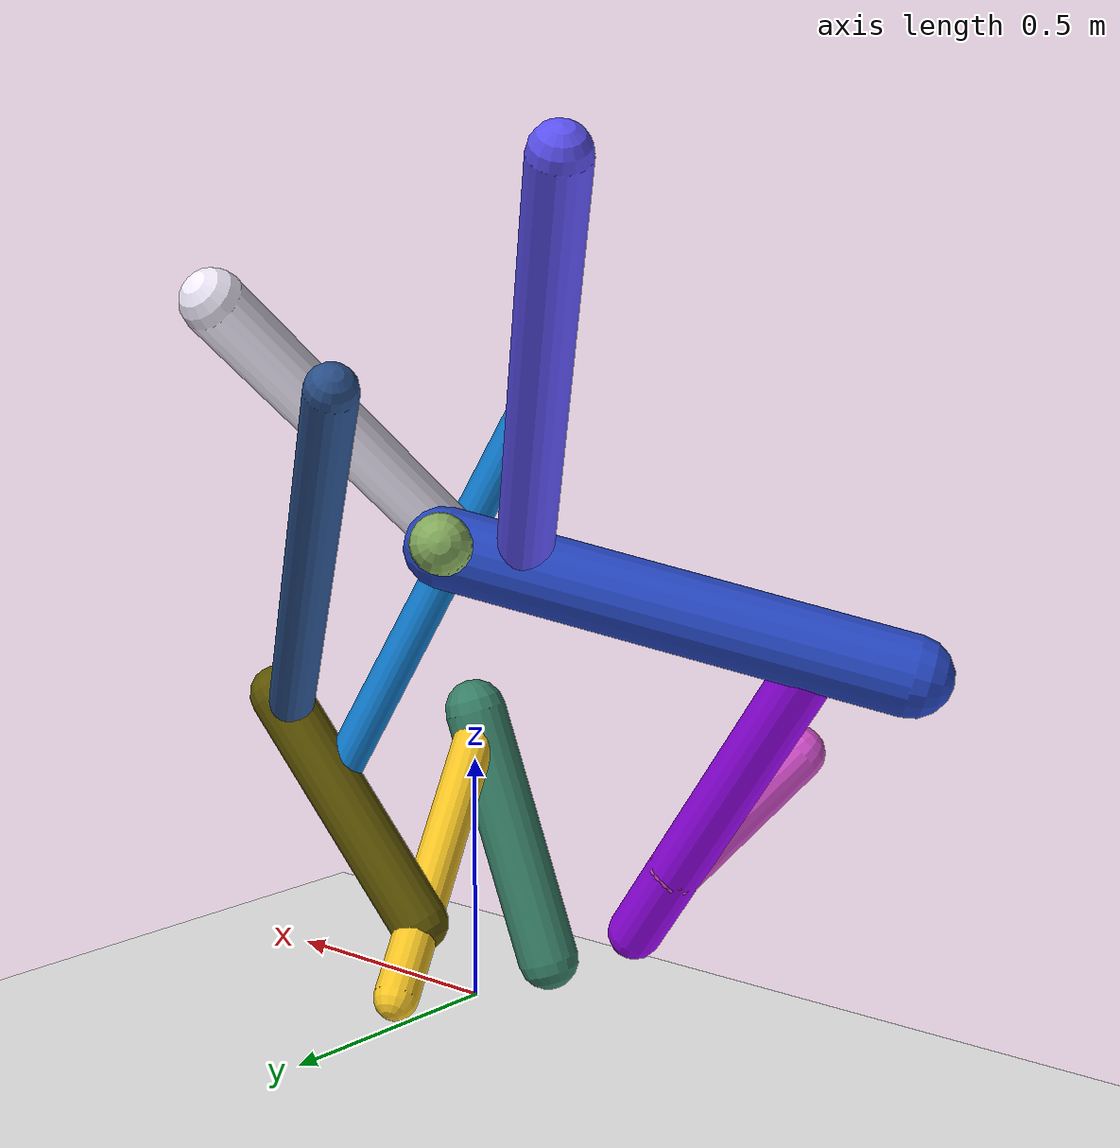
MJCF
<mujoco model="morphology">
  <option timestep="0.01"/>
  <default>
    <default class="/"/>
    <default class="0/"/>
    <default class="0/1/"/>
    <default class="0/1/2/"/>
    <default class="0/1/2/3/"/>
    <default class="0/1/2/4/"/>
    <default class="0/1/2/4/5/"/>
    <default class="0/1/2/4/6/"/>
    <default class="0/1/2/4/6/7/"/>
    <default class="0/1/2/4/6/7/8/"/>
    <default class="0/1/2/4/6/7/9/"/>
    <default class="0/1/2/4/6/7/9/10/"/>
  </default>
  <asset>
    <texture name="texplane" type="2d" builtin="checker" rgb1="0.10000000000000001 0.20000000000000001 0.29999999999999999" rgb2="0.20000000000000001 0.29999999999999999 0.40000000000000002" width="300" height="300"/>
    <material name="MatPlane" class="/" texture="texplane" texrepeat="20 20" specular="1" shininess="1" reflectance="0.5"/>
  </asset>
  <worldbody>
    <light name="//unnamed_light_0" class="/" directional="true" pos="0 0 1.5" dir="0 0 -1.3" cutoff="100" exponent="1" diffuse="1 1 1" specular="0.10000000000000001 0.10000000000000001 0.10000000000000001"/>
    <geom name="ground" class="/" type="plane" size="15 15 0.5" material="MatPlane" rgba="1 1 1 1"/>
    <site name="body" class="/" size="9.9999999999999995e-07 9.9999999999999995e-07 9.9999999999999995e-07" pos="0 0 0.60107800960540769"/>
    <body pos="0 0 0.60107800960540769" name="0/">
      <freejoint name="0/"/>
      <geom name="0/geom" class="0/" type="capsule" contype="1" conaffinity="1" condim="3" size="0.0617949039909454" rgba="0.21771089611785077 0.50197276438529403 0.40774222404812877 1" friction="0.59999999999999998 0.10000000000000001 0.10000000000000001" fromto="0 0 0 -0.1534791893275893 -0.046990474458977971 -0.50107798431670281"/>
      <site name="0/end0" class="0/" size="0.0050000000000000001" pos="-0.1534791893275893 -0.046990474458977971 -0.50107798431670281"/>
      <site name="0/attach1" class="0/" size="9.9999999999999995e-07 9.9999999999999995e-07 9.9999999999999995e-07" pos="-0.0082948822211645918 -0.0025396306356681975 -0.027081084293806991"/>
      <body pos="-0.0082948822211645918 -0.0025396306356681975 -0.027081084293806991" name="0/1/">
        <joint name="0/1/joint/" class="0/" type="hinge" axis="0 1 0" limited="true" range="-57.789776338162994 57.789776338162994"/>
        <geom name="0/1/geom" class="0/1/" type="capsule" contype="1" conaffinity="1" condim="3" size="0.041923635595529363" rgba="0.96104423388136162 0.77043543298782746 0.14104224936025622 1" friction="0.59999999999999998 0.10000000000000001 0.10000000000000001" fromto="0 0 0 -0.18343248424038505 0.43962465359193192 -0.41034713341520407"/>
        <site name="0/1/end1" class="0/1/" size="0.0050000000000000001" pos="-0.18343248424038505 0.43962465359193192 -0.41034713341520407"/>
        <site name="0/1/attach2" class="0/1/" size="9.9999999999999995e-07 9.9999999999999995e-07 9.9999999999999995e-07" pos="-0.13636793045490492 0.32682708537448524 -0.30506150305745144"/>
        <body pos="-0.13636793045490492 0.32682708537448524 -0.30506150305745144" name="0/1/2/">
          <geom name="0/1/2/geom" class="0/1/2/" type="capsule" contype="1" conaffinity="1" condim="3" size="0.056002284842652551" rgba="0.35976978968058149 0.32273571199873985 0.00953609732104721 1" friction="0.59999999999999998 0.10000000000000001 0.10000000000000001" fromto="0 0 0 0.28245395055756717 0.081099540083836907 0.41032196096225393"/>
          <site name="0/1/2/end2" class="0/1/2/" size="0.0050000000000000001" pos="0.28245395055756717 0.081099540083836907 0.41032196096225393"/>
          <site name="0/1/2/attach3" class="0/1/2/" size="9.9999999999999995e-07 9.9999999999999995e-07 9.9999999999999995e-07" pos="0.25971401445712688 0.074570339994260965 0.37728756666728969"/>
          <body pos="0.25971401445712688 0.074570339994260965 0.37728756666728969" name="0/1/2/3/">
            <joint name="0/1/2/3/joint/" class="0/1/2/" type="hinge" axis="5.5511151231257827e-17 -0.98102178716857957 0.19389753247673347" limited="true" range="-52.95073511342023 52.95073511342023"/>
            <geom name="0/1/2/3/geom" class="0/1/2/3/" type="capsule" contype="1" conaffinity="1" condim="3" size="0.042939373639543373" rgba="0.15866323306595675 0.30493280463561623 0.53127416372716985 1" friction="0.59999999999999998 0.10000000000000001 0.10000000000000001" fromto="0 0 0 -0.59239419379882063 0.45891489011203013 0.64705589140596564"/>
            <site name="0/1/2/3/end3" class="0/1/2/3/" size="0.0050000000000000001" pos="-0.59239419379882063 0.45891489011203013 0.64705589140596564"/>
          </body>
          <site name="0/1/2/attach4" class="0/1/2/" size="9.9999999999999995e-07 9.9999999999999995e-07 9.9999999999999995e-07" pos="0.17040812273101039 0.048928401789934628 0.24755254775108454"/>
          <body pos="0.17040812273101039 0.048928401789934628 0.24755254775108454" name="0/1/2/4/">
            <joint name="0/1/2/4/joint/" class="0/1/2/" type="hinge" axis="5.5511151231257827e-17 -0.98102178716857957 0.19389753247673347" limited="true" range="-43.828291327086305 43.828291327086305"/>
            <geom name="0/1/2/4/geom" class="0/1/2/4/" type="capsule" contype="1" conaffinity="1" condim="3" size="0.037119592405710888" rgba="0.05037571528140572 0.45564381320567282 0.76319961074131693 1" friction="0.59999999999999998 0.10000000000000001 0.10000000000000001" fromto="0 0 0 -0.20504494414269514 -0.3256464013540149 0.70074238108833464"/>
            <site name="0/1/2/4/end4" class="0/1/2/4/" size="0.0050000000000000001" pos="-0.20504494414269514 -0.3256464013540149 0.70074238108833464"/>
            <site name="0/1/2/4/attach5" class="0/1/2/4/" size="9.9999999999999995e-07 9.9999999999999995e-07 9.9999999999999995e-07" pos="-0.13041039644695979 -0.20711398898257499 0.44567834679854462"/>
            <body pos="-0.13041039644695979 -0.20711398898257499 0.44567834679854462" name="0/1/2/4/5/">
              <joint name="0/1/2/4/5/joint/" class="0/1/2/4/" type="hinge" axis="0.9665493289138033 -0.10808934226180855 0.2325921083478234" limited="true" range="-57.999969049333686 57.999969049333686"/>
              <geom name="0/1/2/4/5/geom" class="0/1/2/4/5/" type="capsule" contype="1" conaffinity="1" condim="3" size="0.05492281189191757" rgba="0.95263715685082495 0.9278501656620094 0.99630708252124955 1" friction="0.59999999999999998 0.10000000000000001 0.10000000000000001" fromto="0 0 0 -0.042270032641058553 0.62781712028079761 0.45537519925791825"/>
              <site name="0/1/2/4/5/end5" class="0/1/2/4/5/" size="0.0050000000000000001" pos="-0.042270032641058553 0.62781712028079761 0.45537519925791825"/>
            </body>
            <site name="0/1/2/4/attach6" class="0/1/2/4/" size="9.9999999999999995e-07 9.9999999999999995e-07 9.9999999999999995e-07" pos="-0.12455193198687939 -0.1978097465548373 0.42565700780653726"/>
            <body pos="-0.12455193198687939 -0.1978097465548373 0.42565700780653726" name="0/1/2/4/6/">
              <joint name="0/1/2/4/6/joint/" class="0/1/2/4/" type="hinge" axis="0.9665493289138033 -0.10808934226180855 0.2325921083478234" limited="true" range="-34.152856513040206 34.152856513040206"/>
              <geom name="0/1/2/4/6/geom" class="0/1/2/4/6/" type="capsule" contype="1" conaffinity="1" condim="3" size="0.047004274551865829" rgba="0.51733868668150318 0.67041627325562947 0.36310719720421913 1" friction="0.59999999999999998 0.10000000000000001 0.10000000000000001" fromto="0 0 0 -0.49930045825264546 0.57938564082510058 0.12468292475479537"/>
              <site name="0/1/2/4/6/end6" class="0/1/2/4/6/" size="0.0050000000000000001" pos="-0.49930045825264546 0.57938564082510058 0.12468292475479537"/>
              <site name="0/1/2/4/6/attach7" class="0/1/2/4/6/" size="9.9999999999999995e-07 9.9999999999999995e-07 9.9999999999999995e-07" pos="-0.35431855081404851 0.41114939356963986 0.088478735559306063"/>
              <body pos="-0.35431855081404851 0.41114939356963986 0.088478735559306063" name="0/1/2/4/6/7/">
                <joint name="0/1/2/4/6/7/joint/" class="0/1/2/4/6/" type="hinge" axis="0 -0.21038219551662973 0.97761921616220415" limited="true" range="-64.597770038014971 64.597770038014971"/>
                <geom name="0/1/2/4/6/7/geom" class="0/1/2/4/6/7/" type="capsule" contype="1" conaffinity="1" condim="3" size="0.066675307230931999" rgba="0.14892391670682248 0.27776907416312191 0.76003441505402458 1" friction="0.59999999999999998 0.10000000000000001 0.10000000000000001" fromto="0 0 0 -0.63621413734524057 -0.37998524864256156 -0.1835775548533447"/>
                <site name="0/1/2/4/6/7/end7" class="0/1/2/4/6/7/" size="0.0050000000000000001" pos="-0.63621413734524057 -0.37998524864256156 -0.1835775548533447"/>
                <site name="0/1/2/4/6/7/attach8" class="0/1/2/4/6/7/" size="9.9999999999999995e-07 9.9999999999999995e-07 9.9999999999999995e-07" pos="-0.11018396836247372 -0.065808475726968893 -0.031793231726073554"/>
                <body pos="-0.11018396836247372 -0.065808475726968893 -0.031793231726073554" name="0/1/2/4/6/7/8/">
                  <joint name="0/1/2/4/6/7/8/joint/" class="0/1/2/4/6/7/" type="hinge" axis="5.5511151231257827e-17 -0.43501117547429063 0.90042505363437997" limited="true" range="-41.967412285515024 41.967412285515024"/>
                  <geom name="0/1/2/4/6/7/8/geom" class="0/1/2/4/6/7/8/" type="capsule" contype="1" conaffinity="1" condim="3" size="0.045830179458981421" rgba="0.36111186261690364 0.31879466465154749 0.95383370411009039 1" friction="0.59999999999999998 0.10000000000000001 0.10000000000000001" fromto="0 0 0 -0.36665277008402841 0.36557756490240223 0.61387171951316777"/>
                  <site name="0/1/2/4/6/7/8/end8" class="0/1/2/4/6/7/8/" size="0.0050000000000000001" pos="-0.36665277008402841 0.36557756490240223 0.61387171951316777"/>
                </body>
                <site name="0/1/2/4/6/7/attach9" class="0/1/2/4/6/7/" size="9.9999999999999995e-07 9.9999999999999995e-07 9.9999999999999995e-07" pos="-0.51537358431833979 -0.30781202127664026 -0.14870939969984409"/>
                <body pos="-0.51537358431833979 -0.30781202127664026 -0.14870939969984409" name="0/1/2/4/6/7/9/">
                  <joint name="0/1/2/4/6/7/9/joint/" class="0/1/2/4/6/7/" type="hinge" axis="5.5511151231257827e-17 -0.43501117547429063 0.90042505363437997" limited="true" range="-64.764962502865075 64.764962502865075"/>
                  <geom name="0/1/2/4/6/7/9/geom" class="0/1/2/4/6/7/9/" type="capsule" contype="1" conaffinity="1" condim="3" size="0.049224947604457454" rgba="0.59605353091378432 0.021606435572880667 0.93061515709206954 1" friction="0.59999999999999998 0.10000000000000001 0.10000000000000001" fromto="0 0 0 0.45164316883763256 -0.13012948688225978 -0.59413257960425092"/>
                  <site name="0/1/2/4/6/7/9/end9" class="0/1/2/4/6/7/9/" size="0.0050000000000000001" pos="0.45164316883763256 -0.13012948688225978 -0.59413257960425092"/>
                  <site name="0/1/2/4/6/7/9/attach10" class="0/1/2/4/6/7/9/" size="9.9999999999999995e-07 9.9999999999999995e-07 9.9999999999999995e-07" pos="0.33993082972144506 -0.097942418925448485 -0.44717598910927481"/>
                  <body pos="0.33993082972144506 -0.097942418925448485 -0.44717598910927481" name="0/1/2/4/6/7/9/10/">
                    <joint name="0/1/2/4/6/7/9/10/joint/" class="0/1/2/4/6/7/9/" type="hinge" axis="0 -0.97684404191533381 0.21395260637466879" limited="true" range="-63.473930187334645 63.473930187334645"/>
                    <geom name="0/1/2/4/6/7/9/10/geom" class="0/1/2/4/6/7/9/10/" type="capsule" contype="1" conaffinity="1" condim="3" size="0.04980155738060317" rgba="0.8072370372138058 0.29430256614501615 0.7771755321391961 1" friction="0.59999999999999998 0.10000000000000001 0.10000000000000001" fromto="0 0 0 -0.12504626159354182 -0.18381191054000334 0.19720051908831615"/>
                    <site name="0/1/2/4/6/7/9/10/end10" class="0/1/2/4/6/7/9/10/" size="0.0050000000000000001" pos="-0.12504626159354182 -0.18381191054000334 0.19720051908831615"/>
                  </body>
                </body>
              </body>
            </body>
          </body>
        </body>
      </body>
      <camera name="0/iso" class="0/" mode="trackcom" pos="-2.2999999999999998 -2.2999999999999998 1" xyaxes="0.45000000000000001 -0.45000000000000001 0 0.29999999999999999 0.14999999999999999 0.93999999999999995"/>
    </body>
  </worldbody>
  <actuator>
    <motor name="0/1/motor" class="0/1/" ctrllimited="true" ctrlrange="-1 1" gear="66" joint="0/1/joint/"/>
    <motor name="0/1/2/3/motor" class="0/1/2/3/" ctrllimited="true" ctrlrange="-1 1" gear="70" joint="0/1/2/3/joint/"/>
    <motor name="0/1/2/4/motor" class="0/1/2/4/" ctrllimited="true" ctrlrange="-1 1" gear="55" joint="0/1/2/4/joint/"/>
    <motor name="0/1/2/4/5/motor" class="0/1/2/4/5/" ctrllimited="true" ctrlrange="-1 1" gear="70" joint="0/1/2/4/5/joint/"/>
    <motor name="0/1/2/4/6/motor" class="0/1/2/4/6/" ctrllimited="true" ctrlrange="-1 1" gear="59" joint="0/1/2/4/6/joint/"/>
    <motor name="0/1/2/4/6/7/motor" class="0/1/2/4/6/7/" ctrllimited="true" ctrlrange="-1 1" gear="84" joint="0/1/2/4/6/7/joint/"/>
    <motor name="0/1/2/4/6/7/8/motor" class="0/1/2/4/6/7/8/" ctrllimited="true" ctrlrange="-1 1" gear="69" joint="0/1/2/4/6/7/8/joint/"/>
    <motor name="0/1/2/4/6/7/9/motor" class="0/1/2/4/6/7/9/" ctrllimited="true" ctrlrange="-1 1" gear="56" joint="0/1/2/4/6/7/9/joint/"/>
    <motor name="0/1/2/4/6/7/9/10/motor" class="0/1/2/4/6/7/9/10/" ctrllimited="true" ctrlrange="-1 1" gear="91" joint="0/1/2/4/6/7/9/10/joint/"/>
  </actuator>
  <sensor>
    <subtreelinvel name="velocity" body="0/"/>
  </sensor>
</mujoco>
